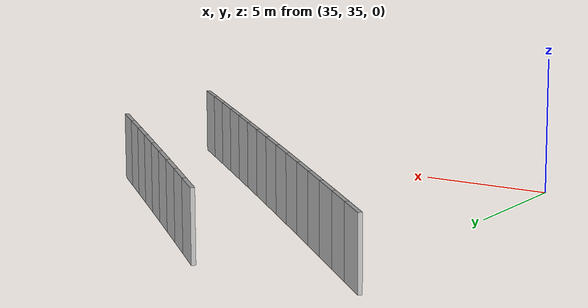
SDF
<?xml version="1.0" ?>
<sdf version="1.6">
  <model name="sps_0908">
    <pose frame="">0 0 0 0 -0 0</pose>
    <static>1</static>
    <self_collide>0</self_collide>
    <allow_auto_disable>0</allow_auto_disable>
    <link name="Wall8533">
      <kinematic>0</kinematic>
      <gravity>1</gravity>
      <self_collide>0</self_collide>
      <collision name="collision">
        <geometry>
          <box>
            <size>1.49887 0.15 2.5</size>
          </box>
        </geometry>
        <pose frame="">0 0 0 0 -0 0</pose>
      </collision>
      <visual name="visual">
        <geometry>
          <box>
            <size>1.49887 0.15 2.5</size>
          </box>
        </geometry>
        <pose frame="">0 0 0 0 -0 0</pose>
        <cast_shadows>1</cast_shadows>
        <transparency>0.0</transparency>
      </visual>
      <pose frame="">34.3639 49.7818 1.25 0 0 -0.752654</pose>
    </link>
    <link name="Wall8534">
      <kinematic>0</kinematic>
      <gravity>1</gravity>
      <self_collide>0</self_collide>
      <collision name="collision">
        <geometry>
          <box>
            <size>1.49882 0.15 2.5</size>
          </box>
        </geometry>
        <pose frame="">0 0 0 0 -0 0</pose>
      </collision>
      <visual name="visual">
        <geometry>
          <box>
            <size>1.49882 0.15 2.5</size>
          </box>
        </geometry>
        <pose frame="">0 0 0 0 -0 0</pose>
        <cast_shadows>1</cast_shadows>
        <transparency>0.0</transparency>
      </visual>
      <pose frame="">35.4585 48.758 1.25 0 0 -0.751241</pose>
    </link>
    <link name="Wall8535">
      <kinematic>0</kinematic>
      <gravity>1</gravity>
      <self_collide>0</self_collide>
      <collision name="collision">
        <geometry>
          <box>
            <size>1.49903 0.15 2.5</size>
          </box>
        </geometry>
        <pose frame="">0 0 0 0 -0 0</pose>
      </collision>
      <visual name="visual">
        <geometry>
          <box>
            <size>1.49903 0.15 2.5</size>
          </box>
        </geometry>
        <pose frame="">0 0 0 0 -0 0</pose>
        <cast_shadows>1</cast_shadows>
        <transparency>0.0</transparency>
      </visual>
      <pose frame="">36.5549 47.7358 1.25 0 0 -0.749603</pose>
    </link>
    <link name="Wall8536">
      <kinematic>0</kinematic>
      <gravity>1</gravity>
      <self_collide>0</self_collide>
      <collision name="collision">
        <geometry>
          <box>
            <size>1.49894 0.15 2.5</size>
          </box>
        </geometry>
        <pose frame="">0 0 0 0 -0 0</pose>
      </collision>
      <visual name="visual">
        <geometry>
          <box>
            <size>1.49894 0.15 2.5</size>
          </box>
        </geometry>
        <pose frame="">0 0 0 0 -0 0</pose>
        <cast_shadows>1</cast_shadows>
        <transparency>0.0</transparency>
      </visual>
      <pose frame="">37.6529 46.7153 1.25 0 0 -0.748046</pose>
    </link>
    <link name="Wall8537">
      <kinematic>0</kinematic>
      <gravity>1</gravity>
      <self_collide>0</self_collide>
      <collision name="collision">
        <geometry>
          <box>
            <size>1.49895 0.15 2.5</size>
          </box>
        </geometry>
        <pose frame="">0 0 0 0 -0 0</pose>
      </collision>
      <visual name="visual">
        <geometry>
          <box>
            <size>1.49895 0.15 2.5</size>
          </box>
        </geometry>
        <pose frame="">0 0 0 0 -0 0</pose>
        <cast_shadows>1</cast_shadows>
        <transparency>0.0</transparency>
      </visual>
      <pose frame="">38.7524 45.6966 1.25 0 0 -0.746432</pose>
    </link>
    <link name="Wall8538">
      <kinematic>0</kinematic>
      <gravity>1</gravity>
      <self_collide>0</self_collide>
      <collision name="collision">
        <geometry>
          <box>
            <size>1.49892 0.15 2.5</size>
          </box>
        </geometry>
        <pose frame="">0 0 0 0 -0 0</pose>
      </collision>
      <visual name="visual">
        <geometry>
          <box>
            <size>1.49892 0.15 2.5</size>
          </box>
        </geometry>
        <pose frame="">0 0 0 0 -0 0</pose>
        <cast_shadows>1</cast_shadows>
        <transparency>0.0</transparency>
      </visual>
      <pose frame="">39.8537 44.6797 1.25 0 0 -0.744789</pose>
    </link>
    <link name="Wall8539">
      <kinematic>0</kinematic>
      <gravity>1</gravity>
      <self_collide>0</self_collide>
      <collision name="collision">
        <geometry>
          <box>
            <size>1.49897 0.15 2.5</size>
          </box>
        </geometry>
        <pose frame="">0 0 0 0 -0 0</pose>
      </collision>
      <visual name="visual">
        <geometry>
          <box>
            <size>1.49897 0.15 2.5</size>
          </box>
        </geometry>
        <pose frame="">0 0 0 0 -0 0</pose>
        <cast_shadows>1</cast_shadows>
        <transparency>0.0</transparency>
      </visual>
      <pose frame="">40.9565 43.6645 1.25 0 0 -0.74332</pose>
    </link>
    <link name="Wall8540">
      <kinematic>0</kinematic>
      <gravity>1</gravity>
      <self_collide>0</self_collide>
      <collision name="collision">
        <geometry>
          <box>
            <size>1.49894 0.15 2.5</size>
          </box>
        </geometry>
        <pose frame="">0 0 0 0 -0 0</pose>
      </collision>
      <visual name="visual">
        <geometry>
          <box>
            <size>1.49894 0.15 2.5</size>
          </box>
        </geometry>
        <pose frame="">0 0 0 0 -0 0</pose>
        <cast_shadows>1</cast_shadows>
        <transparency>0.0</transparency>
      </visual>
      <pose frame="">42.0608 42.651 1.25 0 0 -0.741735</pose>
    </link>
    <link name="Wall8541">
      <kinematic>0</kinematic>
      <gravity>1</gravity>
      <self_collide>0</self_collide>
      <collision name="collision">
        <geometry>
          <box>
            <size>1.49892 0.15 2.5</size>
          </box>
        </geometry>
        <pose frame="">0 0 0 0 -0 0</pose>
      </collision>
      <visual name="visual">
        <geometry>
          <box>
            <size>1.49892 0.15 2.5</size>
          </box>
        </geometry>
        <pose frame="">0 0 0 0 -0 0</pose>
        <cast_shadows>1</cast_shadows>
        <transparency>0.0</transparency>
      </visual>
      <pose frame="">43.1668 41.6393 1.25 0 0 -0.740091</pose>
    </link>
    <link name="Wall8542">
      <kinematic>0</kinematic>
      <gravity>1</gravity>
      <self_collide>0</self_collide>
      <collision name="collision">
        <geometry>
          <box>
            <size>1.49898 0.15 2.5</size>
          </box>
        </geometry>
        <pose frame="">0 0 0 0 -0 0</pose>
      </collision>
      <visual name="visual">
        <geometry>
          <box>
            <size>1.49898 0.15 2.5</size>
          </box>
        </geometry>
        <pose frame="">0 0 0 0 -0 0</pose>
        <cast_shadows>1</cast_shadows>
        <transparency>0.0</transparency>
      </visual>
      <pose frame="">44.2744 40.6293 1.25 0 0 -0.738566</pose>
    </link>
    <link name="Wall8543">
      <kinematic>0</kinematic>
      <gravity>1</gravity>
      <self_collide>0</self_collide>
      <collision name="collision">
        <geometry>
          <box>
            <size>1.49889 0.15 2.5</size>
          </box>
        </geometry>
        <pose frame="">0 0 0 0 -0 0</pose>
      </collision>
      <visual name="visual">
        <geometry>
          <box>
            <size>1.49889 0.15 2.5</size>
          </box>
        </geometry>
        <pose frame="">0 0 0 0 -0 0</pose>
        <cast_shadows>1</cast_shadows>
        <transparency>0.0</transparency>
      </visual>
      <pose frame="">45.3837 39.6211 1.25 0 0 -0.736862</pose>
    </link>
    <link name="Wall8544">
      <kinematic>0</kinematic>
      <gravity>1</gravity>
      <self_collide>0</self_collide>
      <collision name="collision">
        <geometry>
          <box>
            <size>1.49895 0.15 2.5</size>
          </box>
        </geometry>
        <pose frame="">0 0 0 0 -0 0</pose>
      </collision>
      <visual name="visual">
        <geometry>
          <box>
            <size>1.49895 0.15 2.5</size>
          </box>
        </geometry>
        <pose frame="">0 0 0 0 -0 0</pose>
        <cast_shadows>1</cast_shadows>
        <transparency>0.0</transparency>
      </visual>
      <pose frame="">46.4945 38.6147 1.25 0 0 -0.735394</pose>
    </link>
    <link name="Wall8545">
      <kinematic>0</kinematic>
      <gravity>1</gravity>
      <self_collide>0</self_collide>
      <collision name="collision">
        <geometry>
          <box>
            <size>1.49895 0.15 2.5</size>
          </box>
        </geometry>
        <pose frame="">0 0 0 0 -0 0</pose>
      </collision>
      <visual name="visual">
        <geometry>
          <box>
            <size>1.49895 0.15 2.5</size>
          </box>
        </geometry>
        <pose frame="">0 0 0 0 -0 0</pose>
        <cast_shadows>1</cast_shadows>
        <transparency>0.0</transparency>
      </visual>
      <pose frame="">47.6069 37.61 1.25 0 0 -0.73375</pose>
    </link>
    <link name="Wall8546">
      <kinematic>0</kinematic>
      <gravity>1</gravity>
      <self_collide>0</self_collide>
      <collision name="collision">
        <geometry>
          <box>
            <size>1.49906 0.15 2.5</size>
          </box>
        </geometry>
        <pose frame="">0 0 0 0 -0 0</pose>
      </collision>
      <visual name="visual">
        <geometry>
          <box>
            <size>1.49906 0.15 2.5</size>
          </box>
        </geometry>
        <pose frame="">0 0 0 0 -0 0</pose>
        <cast_shadows>1</cast_shadows>
        <transparency>0.0</transparency>
      </visual>
      <pose frame="">48.7209 36.607 1.25 0 0 -0.732255</pose>
    </link>
    <link name="Wall8547">
      <kinematic>0</kinematic>
      <gravity>1</gravity>
      <self_collide>0</self_collide>
      <collision name="collision">
        <geometry>
          <box>
            <size>1.49876 0.15 2.5</size>
          </box>
        </geometry>
        <pose frame="">0 0 0 0 -0 0</pose>
      </collision>
      <visual name="visual">
        <geometry>
          <box>
            <size>1.49876 0.15 2.5</size>
          </box>
        </geometry>
        <pose frame="">0 0 0 0 -0 0</pose>
        <cast_shadows>1</cast_shadows>
        <transparency>0.0</transparency>
      </visual>
      <pose frame="">49.8364 35.6058 1.25 0 0 -0.730687</pose>
    </link>
    <link name="Wall9617">
      <kinematic>0</kinematic>
      <gravity>1</gravity>
      <self_collide>0</self_collide>
      <collision name="collision">
        <geometry>
          <box>
            <size>1.49234 0.15 2.5</size>
          </box>
        </geometry>
        <pose frame="">0 0 0 0 -0 0</pose>
      </collision>
      <visual name="visual">
        <geometry>
          <box>
            <size>1.49234 0.15 2.5</size>
          </box>
        </geometry>
        <pose frame="">0 0 0 0 -0 0</pose>
        <cast_shadows>1</cast_shadows>
        <transparency>0.0</transparency>
      </visual>
      <pose frame="">40.4688 49.7504 1.25 0 0 -0.747967</pose>
    </link>
    <link name="Wall9618">
      <kinematic>0</kinematic>
      <gravity>1</gravity>
      <self_collide>0</self_collide>
      <collision name="collision">
        <geometry>
          <box>
            <size>1.49243 0.15 2.5</size>
          </box>
        </geometry>
        <pose frame="">0 0 0 0 -0 0</pose>
      </collision>
      <visual name="visual">
        <geometry>
          <box>
            <size>1.49243 0.15 2.5</size>
          </box>
        </geometry>
        <pose frame="">0 0 0 0 -0 0</pose>
        <cast_shadows>1</cast_shadows>
        <transparency>0.0</transparency>
      </visual>
      <pose frame="">41.5637 48.7362 1.25 0 0 -0.746407</pose>
    </link>
    <link name="Wall9619">
      <kinematic>0</kinematic>
      <gravity>1</gravity>
      <self_collide>0</self_collide>
      <collision name="collision">
        <geometry>
          <box>
            <size>1.49251 0.15 2.5</size>
          </box>
        </geometry>
        <pose frame="">0 0 0 0 -0 0</pose>
      </collision>
      <visual name="visual">
        <geometry>
          <box>
            <size>1.49251 0.15 2.5</size>
          </box>
        </geometry>
        <pose frame="">0 0 0 0 -0 0</pose>
        <cast_shadows>1</cast_shadows>
        <transparency>0.0</transparency>
      </visual>
      <pose frame="">42.6601 47.7236 1.25 0 0 -0.744962</pose>
    </link>
    <link name="Wall9620">
      <kinematic>0</kinematic>
      <gravity>1</gravity>
      <self_collide>0</self_collide>
      <collision name="collision">
        <geometry>
          <box>
            <size>1.49231 0.15 2.5</size>
          </box>
        </geometry>
        <pose frame="">0 0 0 0 -0 0</pose>
      </collision>
      <visual name="visual">
        <geometry>
          <box>
            <size>1.49231 0.15 2.5</size>
          </box>
        </geometry>
        <pose frame="">0 0 0 0 -0 0</pose>
        <cast_shadows>1</cast_shadows>
        <transparency>0.0</transparency>
      </visual>
      <pose frame="">43.758 46.7127 1.25 0 0 -0.743364</pose>
    </link>
    <link name="Wall9621">
      <kinematic>0</kinematic>
      <gravity>1</gravity>
      <self_collide>0</self_collide>
      <collision name="collision">
        <geometry>
          <box>
            <size>1.49246 0.15 2.5</size>
          </box>
        </geometry>
        <pose frame="">0 0 0 0 -0 0</pose>
      </collision>
      <visual name="visual">
        <geometry>
          <box>
            <size>1.49246 0.15 2.5</size>
          </box>
        </geometry>
        <pose frame="">0 0 0 0 -0 0</pose>
        <cast_shadows>1</cast_shadows>
        <transparency>0.0</transparency>
      </visual>
      <pose frame="">44.8575 45.7036 1.25 0 0 -0.741719</pose>
    </link>
    <link name="Wall9622">
      <kinematic>0</kinematic>
      <gravity>1</gravity>
      <self_collide>0</self_collide>
      <collision name="collision">
        <geometry>
          <box>
            <size>1.49239 0.15 2.5</size>
          </box>
        </geometry>
        <pose frame="">0 0 0 0 -0 0</pose>
      </collision>
      <visual name="visual">
        <geometry>
          <box>
            <size>1.49239 0.15 2.5</size>
          </box>
        </geometry>
        <pose frame="">0 0 0 0 -0 0</pose>
        <cast_shadows>1</cast_shadows>
        <transparency>0.0</transparency>
      </visual>
      <pose frame="">45.9587 44.6963 1.25 0 0 -0.740096</pose>
    </link>
    <link name="Wall9623">
      <kinematic>0</kinematic>
      <gravity>1</gravity>
      <self_collide>0</self_collide>
      <collision name="collision">
        <geometry>
          <box>
            <size>1.49233 0.15 2.5</size>
          </box>
        </geometry>
        <pose frame="">0 0 0 0 -0 0</pose>
      </collision>
      <visual name="visual">
        <geometry>
          <box>
            <size>1.49233 0.15 2.5</size>
          </box>
        </geometry>
        <pose frame="">0 0 0 0 -0 0</pose>
        <cast_shadows>1</cast_shadows>
        <transparency>0.0</transparency>
      </visual>
      <pose frame="">47.0615 43.6908 1.25 0 0 -0.738473</pose>
    </link>
    <link name="Wall9624">
      <kinematic>0</kinematic>
      <gravity>1</gravity>
      <self_collide>0</self_collide>
      <collision name="collision">
        <geometry>
          <box>
            <size>1.49236 0.15 2.5</size>
          </box>
        </geometry>
        <pose frame="">0 0 0 0 -0 0</pose>
      </collision>
      <visual name="visual">
        <geometry>
          <box>
            <size>1.49236 0.15 2.5</size>
          </box>
        </geometry>
        <pose frame="">0 0 0 0 -0 0</pose>
        <cast_shadows>1</cast_shadows>
        <transparency>0.0</transparency>
      </visual>
      <pose frame="">48.1659 42.6871 1.25 0 0 -0.736852</pose>
    </link>
    <link name="Wall9625">
      <kinematic>0</kinematic>
      <gravity>1</gravity>
      <self_collide>0</self_collide>
      <collision name="collision">
        <geometry>
          <box>
            <size>1.49229 0.15 2.5</size>
          </box>
        </geometry>
        <pose frame="">0 0 0 0 -0 0</pose>
      </collision>
      <visual name="visual">
        <geometry>
          <box>
            <size>1.49229 0.15 2.5</size>
          </box>
        </geometry>
        <pose frame="">0 0 0 0 -0 0</pose>
        <cast_shadows>1</cast_shadows>
        <transparency>0.0</transparency>
      </visual>
      <pose frame="">49.2718 41.6851 1.25 0 0 -0.73546</pose>
    </link>
  </model>
</sdf>
